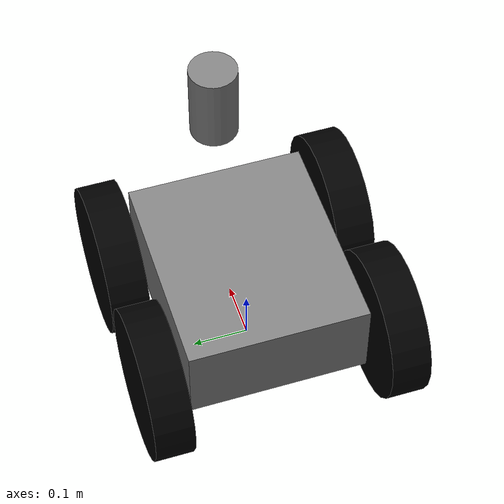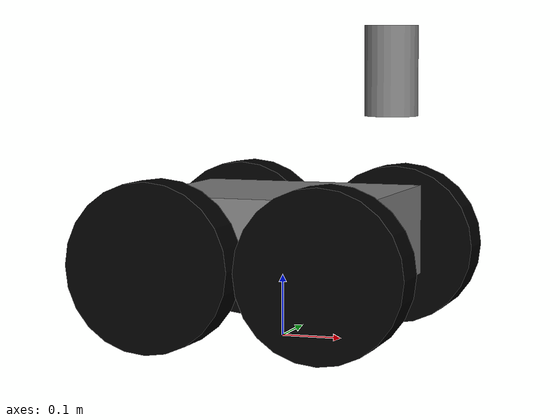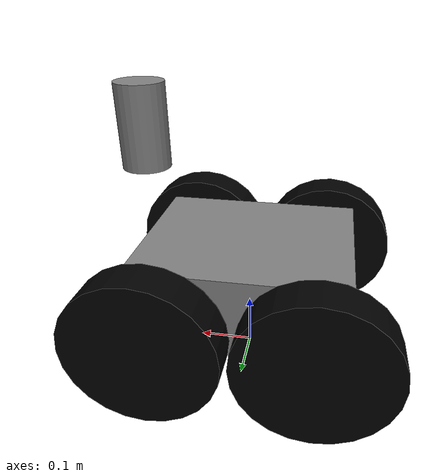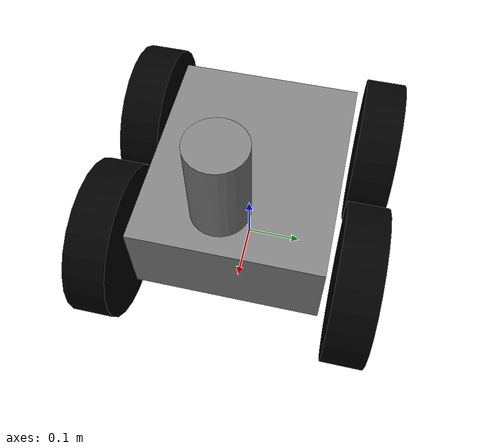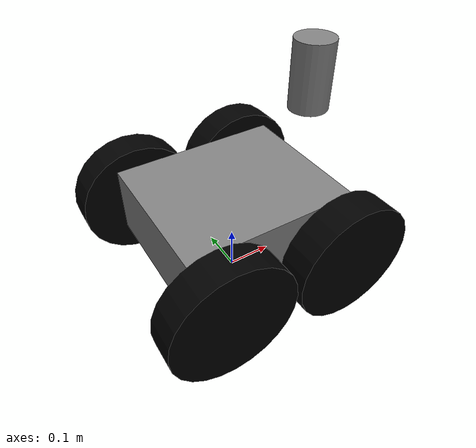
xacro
<?xml version="1.0"?>
<robot
  xmlns:xacro="http://ros.org/wiki/xacro"
  xmlns:controller="http://playerstage.sourceforge.net/gazebo/xmlschema/#controller"
  xmlns:interface="http://playerstage.sourceforge.net/gazebo/xmlschema/#interface"
  xmlns:sensor="http://playerstage.sourceforge.net/gazebo/xmlschema/#sensor"
  name="robot">

<xacro:macro name="box_inertial" params="x y z mass">
    <inertial>
    <mass value="${mass}" />
    <origin xyz="0 0 0" />
    <inertia ixx="${0.0833333 * mass * (y*y + z*z)}" ixy="0.0" ixz="0.0"
        iyy="${0.0833333 * mass * (x*x + z*z)}" iyz="0.0"
        izz="${0.0833333 * mass * (x*x + y*y)}" />
    </inertial>
</xacro:macro>

<xacro:macro name="cylinder_inertial_with_origin" params="radius length mass *origin">
<inertial>
    <mass value="${mass}" />
    <xacro:insert_block name="origin" />
    <inertia ixx="${0.0833333 * mass * (3 * radius * radius + length * length)}" ixy="0.0" ixz="0.0"
    iyy="${0.0833333 * mass * (3 * radius * radius + length * length)}" iyz="0.0"
    izz="${0.5 * mass * radius * radius}" />
</inertial>
</xacro:macro>

<xacro:property name="M_PI" value="3.14159265359"/>

<xacro:property name="imu_stdev" value="0.00017" />

<xacro:property name="body_height" value="0.15"/>
<xacro:property name="body_length" value="0.38"/>
<xacro:property name="body_width" value="0.32"/>

<xacro:property name="axis_front" value="0.14"/>
<xacro:property name="axis_back" value="-0.14"/>

<xacro:property name="wheel_thickness" value="0.07"/>
<xacro:property name="wheel_body_offset" value="${wheel_thickness/2 + 0.015}"/>
<xacro:property name="wheel_radius" value="0.135"/>
<xacro:property name="axis_height" value="-0.03"/>
<xacro:property name="axis_right" value="${-body_width/2 - wheel_body_offset}"/>
<xacro:property name="axis_left" value="${body_width/2 + wheel_body_offset}"/>
<xacro:property name="axis_length" value="${body_width + 2 * wheel_body_offset}" />
<xacro:property name="turning_adaptation" value="2.95" />

<xacro:property name="body_mass" value="25.0"/>
<xacro:property name="wheel_mass" value="5.0"/>

<xacro:property name="imu_width" value="0.036"/>
<xacro:property name="imu_length" value="0.038"/>
<xacro:property name="imu_height" value="0.012"/>

<xacro:property name="imu_offset_x" value="0"/>
<xacro:property name="imu_offset_y" value="0"/>
<xacro:property name="imu_offset_z" value="${- body_height/2 + 0.005 + 0.007}"/>

<xacro:property name="velodyne_height" value="0.1442"/>
<xacro:property name="velodyne_radius" value="0.04265"/>
<xacro:property name="velodyne_height_to_lense" value="0.090805"/>
<xacro:property name="velodyne_offset_x" value="${body_length/2 - 0.0265 + 0.02}"/>
<xacro:property name="velodyne_offset_y" value="0"/>
<xacro:property name="velodyne_offset_z"
  value="${0.2 + velodyne_height/2}"/>

<link name="base_footprint" />

<link name="base_link">
    <visual>
        <origin xyz="0 0 0" rpy="0 0 0" />
        <geometry>
            <box size="${body_length} ${body_width} ${body_height}"/>
        </geometry>
        <material name="silver" >
            <color rgba="0.5 0.5 0.5 1" />
        </material>
    </visual>
    <collision>
        <origin xyz="0 0 0" rpy="0 0 0" />
        <geometry>
            <box size="${body_length} ${body_width} ${body_height}"/>
        </geometry>
    </collision>
    <xacro:box_inertial
        x="${body_length}"
        y="${body_width}"
        z="${body_height}"
        mass="${body_mass}"/>
</link>

<joint name="base_footprint_to_base_joint" type="fixed">
    <origin xyz="0 0 ${wheel_radius - axis_height}" rpy="0 0 0" />
    <parent link="base_footprint" />
    <child link="base_link" />
</joint>

<!--Wheel Macro-->
<xacro:macro name="wheel" params="name parent xyz">
  <link name="${name}_link">
    <visual>
      <origin xyz="0 0 0" rpy="${M_PI/2} 0 0" />
      <geometry>
        <cylinder length="${wheel_thickness}" radius="${wheel_radius}"/>
      </geometry>
      <material name="black" >
        <color rgba="0 0 0 1" />
      </material>
    </visual>
    <collision>
      <origin xyz="0 0 0" rpy="${M_PI/2} 0 0" />
      <geometry>
        <cylinder length="${wheel_thickness}" radius="${wheel_radius}"/>
      </geometry>
    </collision>
    <xacro:cylinder_inertial_with_origin radius="${wheel_radius}" length="${wheel_thickness}" mass="${wheel_mass}">
              <origin xyz="0 0 0" rpy="${M_PI/2} 0 0"/>
    </xacro:cylinder_inertial_with_origin>
  </link>

  <joint name="${name}_joint" type="continuous">
    <origin xyz="${xyz}" rpy="0 0 0"/>
    <parent link="${parent}"/>
    <child link="${name}_link"/>
    <axis xyz="0 1 0"/>
  </joint>

  <gazebo reference="${name}_link">
    <mu1 value="0.7"/>
    <mu2 value="0.7"/>
    <kp value="100000000.0"/>
    <kd value="10000.0"/>
    <material>Gazebo/Black</material>
    <selfCollide>false</selfCollide>
  </gazebo>
</xacro:macro>

<xacro:macro name="box_for_joint" params="name o_x o_y o_z r_x r_y r_z r g b color length height width">
  <link name="${name}_link">
    <visual>
      <origin xyz="${o_x} ${o_y} ${o_z}" rpy="${r_x} ${r_y} ${r_z}" />
      <geometry>
        <box size="${length} ${width} ${height}" />
      </geometry>
      <material name="${color}">
        <color rgba="${r} ${g} ${b} 1"/>
      </material>
    </visual>
  </link>
</xacro:macro>

<xacro:wheel
  name="left_front_wheel"
  parent="base_link"
  xyz="${axis_front} ${axis_left} ${axis_height}" />

<xacro:wheel
  name="left_rear_wheel"
  parent="base_link"
  xyz="${axis_back} ${axis_left} ${axis_height}" />

<xacro:wheel
  name="right_front_wheel"
  parent="base_link"
  xyz="${axis_front} ${axis_right} ${axis_height}" />

<xacro:wheel
  name="right_rear_wheel"
  parent="base_link"
  xyz="${axis_back} ${axis_right} ${axis_height}" />

<!-- Odom -->
<gazebo>
  <plugin name="skid_steer_drive_controller" filename="libgazebo_ros_skid_steer_drive.so">
    <updateRate>100.0</updateRate>
    <robotNamespace>/</robotNamespace>
    <leftFrontJoint>left_front_wheel_joint</leftFrontJoint>
    <rightFrontJoint>right_front_wheel_joint</rightFrontJoint>
    <leftRearJoint>left_rear_wheel_joint</leftRearJoint>
    <rightRearJoint>right_rear_wheel_joint</rightRearJoint>
    <wheelSeparation>${axis_length}</wheelSeparation>
    <wheelDiameter>${2*wheel_radius}</wheelDiameter>
    <robotBaseFrame>base_link</robotBaseFrame>
    <torque>30</torque>
    <topicName>cmd_vel</topicName>
    <broadcastTF>false</broadcastTF>
  </plugin>
</gazebo>

<!-- IMU -->
<link name="imu">
    <visual>
        <origin xyz="0 0 0" rpy="0 0 0" />
        <geometry>
            <box size="${imu_length} ${imu_width} ${imu_height}"/>
        </geometry>
        <material name="white" >
            <color rgba="0.8 0.8 0.8 1" />
        </material>
    </visual>
</link>

<!-- inertial measurement unit for gazebo -->
<gazebo>
    <plugin name="imu_controller" filename="libgazebo_ros_imu.so">
    <alwaysOn>true</alwaysOn>
    <updateRate>100.0</updateRate>
    <bodyName>imu</bodyName>
    <topicName>imu/data</topicName>
    <serviceName>/default_imu</serviceName>
    <gaussianNoise>${imu_stdev*imu_stdev}</gaussianNoise>
    <xyzOffsets>0 0 0</xyzOffsets>
    <rpyOffsets>0 0 0</rpyOffsets>
    <interface:position name="imu_position"/>
    </plugin>
</gazebo>

<joint name="imu_to_base_joint" type="fixed">
    <parent link="base_link" />
    <child link="imu" />
    <origin xyz="${imu_offset_x} ${imu_offset_y} ${imu_offset_z}" rpy="${M_PI} 0 ${M_PI/2.0}" />
</joint>

<!-- Velodyne -->
<link name="velodyne">
  <visual>
    <origin xyz="0 0 ${-velodyne_height_to_lense}" rpy="0 0 0" />
    <geometry>
      <cylinder length="0.1442" radius="0.04265"/>
    </geometry>
    <material name="silver">
      <color rgba="0.5 0.5 0.5 1" />
    </material>
  </visual>
</link>

<joint name="velodyne_to_base_joint" type="fixed">
  <child link="velodyne" />
  <parent link="base_link" />
  <origin
    xyz=" ${velodyne_offset_x}
          ${velodyne_offset_y}
          ${velodyne_offset_z + velodyne_height_to_lense}"
    rpy="0 0 0" />
</joint>

<gazebo reference="velodyne">
  <sensor type="ray" name="velodyne-VLP16">
    <pose>0 0 0 0 0 0</pose>
    <visualize>false</visualize>
    <update_rate>5</update_rate>
    <ray>
      <scan>
        <horizontal>
          <samples>1875</samples>
          <resolution>1</resolution>
          <min_angle>-3.14159</min_angle>
          <max_angle>3.14159</max_angle>
        </horizontal>
        <vertical>
          <samples>16</samples>
          <resolution>1</resolution>
          <min_angle>-${15.0*M_PI/180.0}</min_angle>
          <max_angle>${15.0*M_PI/180.0}</max_angle>
        </vertical>
      </scan>
      <range>
        <min>0.22</min>
        <max>50</max>
        <resolution>0.02</resolution>
      </range>
      <noise>
        <type>gaussian</type>
        <mean>0.0</mean>
        <stddev>0.0</stddev>
      </noise>
    </ray>
    <plugin name="gazebo_ros_laser_controller" filename="libgazebo_ros_velodyne_laser.so">
      <topicName>/velodyne_points</topicName>
      <frameName>velodyne</frameName>
      <min_range>0.9</min_range>
      <max_range>130.0</max_range>
      <gaussianNoise>0.00</gaussianNoise>
    </plugin>
  </sensor>
</gazebo>

<!-- publish ground truth for pose of base_footprint -->
<gazebo>
    <plugin name="base_footprint_controller" filename="libgazebo_ros_p3d.so">
    <alwaysOn>true</alwaysOn>
    <updateRate>30.0</updateRate>
    <bodyName>base_footprint</bodyName>
    <topicName>base_footprint_pose_ground_truth</topicName>
    <gaussianNoise>0.0</gaussianNoise>
    <frameName>map</frameName>
    <interface:position name="base_footprint_p3d_position_iface" />
    </plugin>
</gazebo>

</robot>
